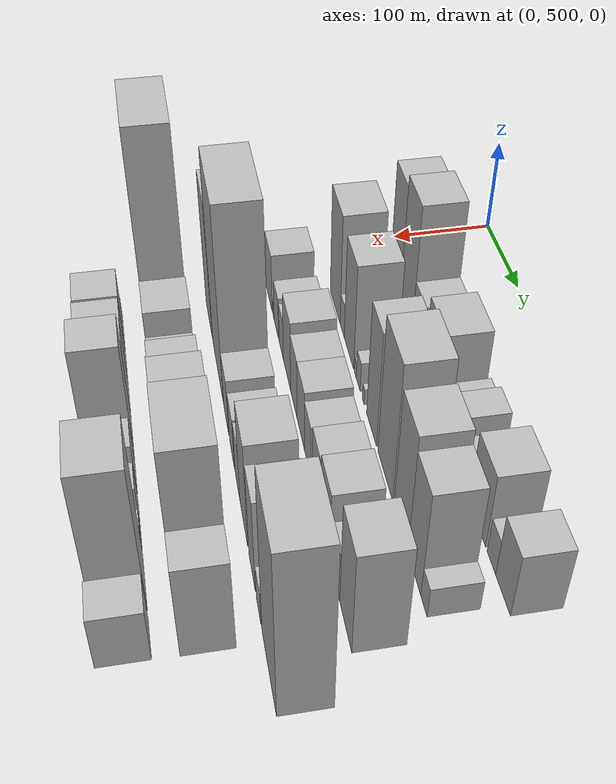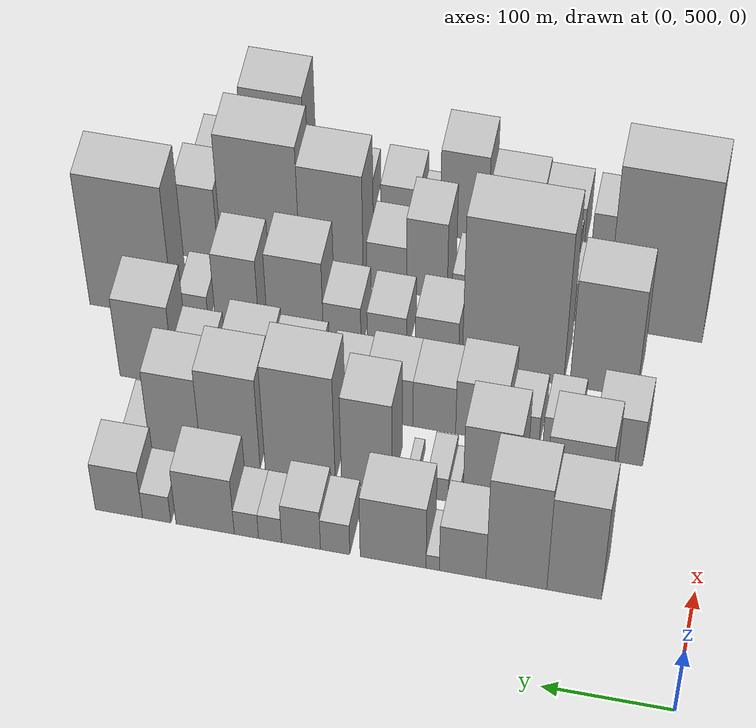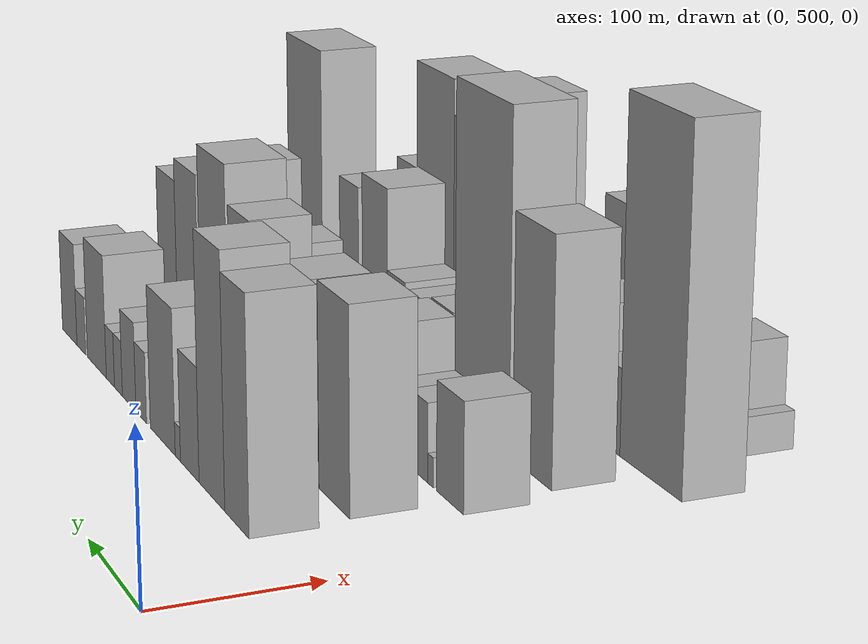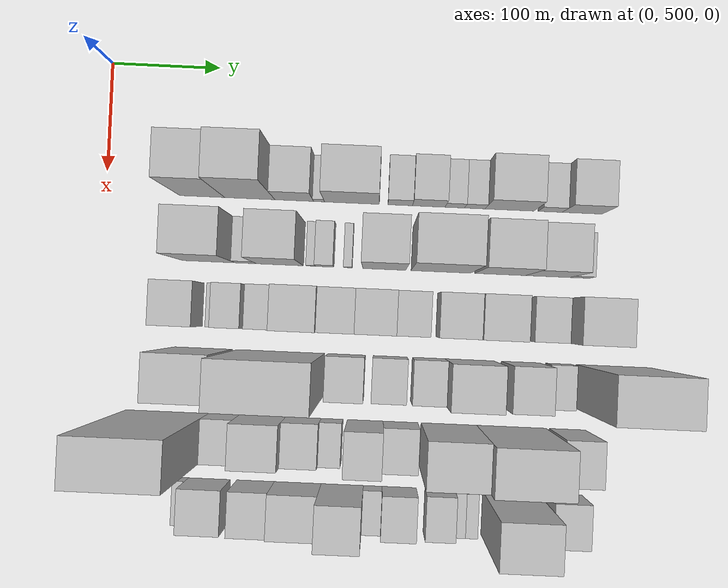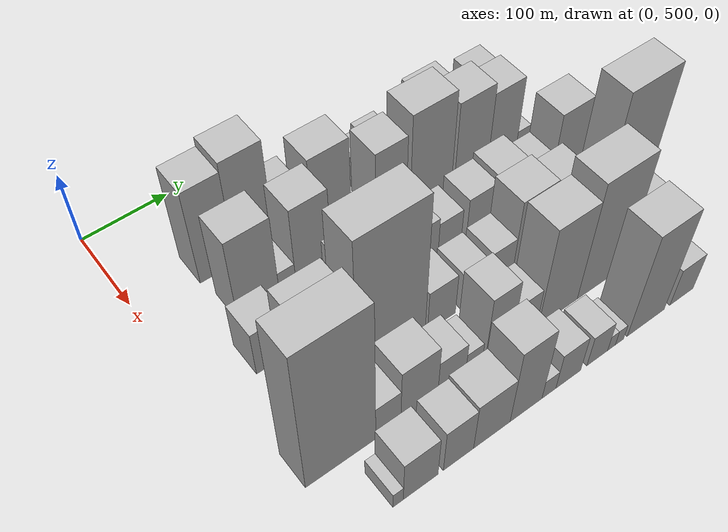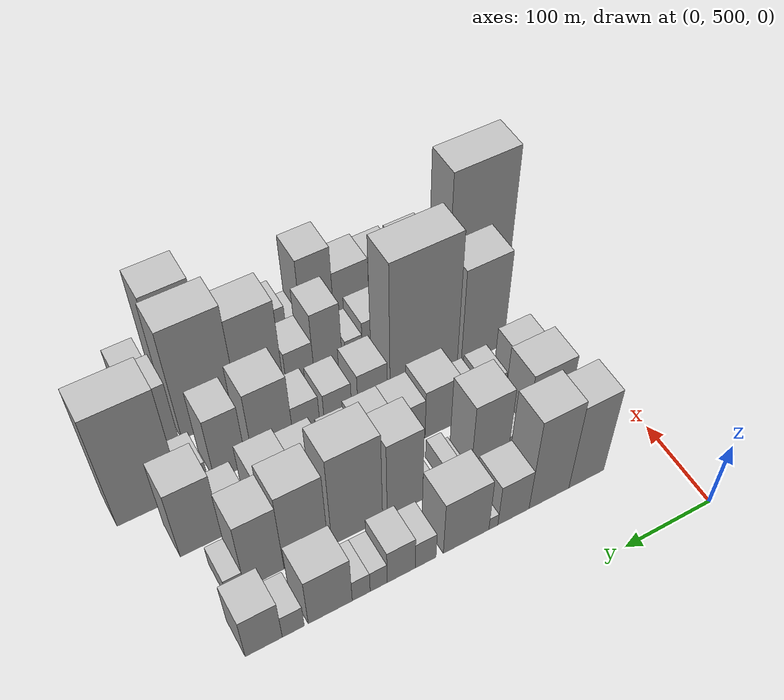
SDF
<sdf version="1.6">
 <world name="default">
  <model name="building_42">
   <static>1</static>
   <pose>100.0000 588.9424 0 0.000000 0.000000 0.000000</pose>
   <link name="link">
    <pose>0 0 69.00 0 0 0</pose>
    <collision name="collision"><geometry><box><size>40.0000 41.5972 138.0000</size></box></geometry></collision>
    <visual name="visual">
     <cast_shadows>0</cast_shadows>
     <geometry><box><size>40.0000 41.5972 138.0000</size></box></geometry>
     <material>
      <script>
       <uri>model://HANNAS_wall/materials/scripts</uri>
       <uri>model://HANNAS_wall/materials/textures</uri>
       <name>vrc/HANNAS_wall</name>
      </script>
     </material>
    </visual>
   </link>
  </model>
  <model name="building_43">
   <static>1</static>
   <pose>100.0000 633.0109 0 0.000000 0.000000 0.000000</pose>
   <link name="link">
    <pose>0 0 75.00 0 0 0</pose>
    <collision name="collision"><geometry><box><size>40.0000 46.5398 150.0000</size></box></geometry></collision>
    <visual name="visual">
     <cast_shadows>0</cast_shadows>
     <geometry><box><size>40.0000 46.5398 150.0000</size></box></geometry>
     <material>
      <script>
       <uri>model://HANNAS_wall/materials/scripts</uri>
       <uri>model://HANNAS_wall/materials/textures</uri>
       <name>vrc/HANNAS_wall</name>
      </script>
     </material>
    </visual>
   </link>
  </model>
  <model name="building_44">
   <static>1</static>
   <pose>100.0000 674.1414 0 0.000000 0.000000 0.000000</pose>
   <link name="link">
    <pose>0 0 34.50 0 0 0</pose>
    <collision name="collision"><geometry><box><size>40.0000 35.7212 69.0000</size></box></geometry></collision>
    <visual name="visual">
     <cast_shadows>0</cast_shadows>
     <geometry><box><size>40.0000 35.7212 69.0000</size></box></geometry>
     <material>
      <script>
       <uri>model://HANNAS_wall/materials/scripts</uri>
       <uri>model://HANNAS_wall/materials/textures</uri>
       <name>vrc/HANNAS_wall</name>
      </script>
     </material>
    </visual>
   </link>
  </model>
  <model name="building_45">
   <static>1</static>
   <pose>100.0000 697.1160 0 0.000000 0.000000 0.000000</pose>
   <link name="link">
    <pose>0 0 10.50 0 0 0</pose>
    <collision name="collision"><geometry><box><size>40.0000 10.2280 21.0000</size></box></geometry></collision>
    <visual name="visual">
     <cast_shadows>0</cast_shadows>
     <geometry><box><size>40.0000 10.2280 21.0000</size></box></geometry>
     <material>
      <script>
       <uri>model://HANNAS_wall/materials/scripts</uri>
       <uri>model://HANNAS_wall/materials/textures</uri>
       <name>vrc/HANNAS_wall</name>
      </script>
     </material>
    </visual>
   </link>
  </model>
  <model name="building_46">
   <static>1</static>
   <pose>100.0000 727.5770 0 0.000000 0.000000 0.000000</pose>
   <link name="link">
    <pose>0 0 45.00 0 0 0</pose>
    <collision name="collision"><geometry><box><size>40.0000 50.6938 90.0000</size></box></geometry></collision>
    <visual name="visual">
     <cast_shadows>0</cast_shadows>
     <geometry><box><size>40.0000 50.6938 90.0000</size></box></geometry>
     <material>
      <script>
       <uri>model://HANNAS_wall/materials/scripts</uri>
       <uri>model://HANNAS_wall/materials/textures</uri>
       <name>vrc/HANNAS_wall</name>
      </script>
     </material>
    </visual>
   </link>
  </model>
  <model name="building_47">
   <static>1</static>
   <pose>100.0000 772.2596 0 0.000000 0.000000 0.000000</pose>
   <link name="link">
    <pose>0 0 22.50 0 0 0</pose>
    <collision name="collision"><geometry><box><size>40.0000 22.6715 45.0000</size></box></geometry></collision>
    <visual name="visual">
     <cast_shadows>0</cast_shadows>
     <geometry><box><size>40.0000 22.6715 45.0000</size></box></geometry>
     <material>
      <script>
       <uri>model://HANNAS_wall/materials/scripts</uri>
       <uri>model://HANNAS_wall/materials/textures</uri>
       <name>vrc/HANNAS_wall</name>
      </script>
     </material>
    </visual>
   </link>
  </model>
  <model name="building_48">
   <static>1</static>
   <pose>100.0000 798.6572 0 0.000000 0.000000 0.000000</pose>
   <link name="link">
    <pose>0 0 28.50 0 0 0</pose>
    <collision name="collision"><geometry><box><size>40.0000 30.1238 57.0000</size></box></geometry></collision>
    <visual name="visual">
     <cast_shadows>0</cast_shadows>
     <geometry><box><size>40.0000 30.1238 57.0000</size></box></geometry>
     <material>
      <script>
       <uri>model://HANNAS_wall/materials/scripts</uri>
       <uri>model://HANNAS_wall/materials/textures</uri>
       <name>vrc/HANNAS_wall</name>
      </script>
     </material>
    </visual>
   </link>
  </model>
  <model name="building_49">
   <static>1</static>
   <pose>100.0000 822.7198 0 0.000000 0.000000 0.000000</pose>
   <link name="link">
    <pose>0 0 18.00 0 0 0</pose>
    <collision name="collision"><geometry><box><size>40.0000 18.0014 36.0000</size></box></geometry></collision>
    <visual name="visual">
     <cast_shadows>0</cast_shadows>
     <geometry><box><size>40.0000 18.0014 36.0000</size></box></geometry>
     <material>
      <script>
       <uri>model://HANNAS_wall/materials/scripts</uri>
       <uri>model://HANNAS_wall/materials/textures</uri>
       <name>vrc/HANNAS_wall</name>
      </script>
     </material>
    </visual>
   </link>
  </model>
  <model name="building_50">
   <static>1</static>
   <pose>100.0000 841.1278 0 0.000000 0.000000 0.000000</pose>
   <link name="link">
    <pose>0 0 18.00 0 0 0</pose>
    <collision name="collision"><geometry><box><size>40.0000 18.8147 36.0000</size></box></geometry></collision>
    <visual name="visual">
     <cast_shadows>0</cast_shadows>
     <geometry><box><size>40.0000 18.8147 36.0000</size></box></geometry>
     <material>
      <script>
       <uri>model://HANNAS_wall/materials/scripts</uri>
       <uri>model://HANNAS_wall/materials/textures</uri>
       <name>vrc/HANNAS_wall</name>
      </script>
     </material>
    </visual>
   </link>
  </model>
  <model name="building_51">
   <static>1</static>
   <pose>100.0000 873.2717 0 0.000000 0.000000 0.000000</pose>
   <link name="link">
    <pose>0 0 40.50 0 0 0</pose>
    <collision name="collision"><geometry><box><size>40.0000 45.4730 81.0000</size></box></geometry></collision>
    <visual name="visual">
     <cast_shadows>0</cast_shadows>
     <geometry><box><size>40.0000 45.4730 81.0000</size></box></geometry>
     <material>
      <script>
       <uri>model://HANNAS_wall/materials/scripts</uri>
       <uri>model://HANNAS_wall/materials/textures</uri>
       <name>vrc/HANNAS_wall</name>
      </script>
     </material>
    </visual>
   </link>
  </model>
  <model name="building_52">
   <static>1</static>
   <pose>100.0000 911.0967 0 0.000000 0.000000 0.000000</pose>
   <link name="link">
    <pose>0 0 19.50 0 0 0</pose>
    <collision name="collision"><geometry><box><size>40.0000 22.1771 39.0000</size></box></geometry></collision>
    <visual name="visual">
     <cast_shadows>0</cast_shadows>
     <geometry><box><size>40.0000 22.1771 39.0000</size></box></geometry>
     <material>
      <script>
       <uri>model://HANNAS_wall/materials/scripts</uri>
       <uri>model://HANNAS_wall/materials/textures</uri>
       <name>vrc/HANNAS_wall</name>
      </script>
     </material>
    </visual>
   </link>
  </model>
  <model name="building_53">
   <static>1</static>
   <pose>100.0000 940.7237 0 0.000000 0.000000 0.000000</pose>
   <link name="link">
    <pose>0 0 34.50 0 0 0</pose>
    <collision name="collision"><geometry><box><size>40.0000 37.0770 69.0000</size></box></geometry></collision>
    <visual name="visual">
     <cast_shadows>0</cast_shadows>
     <geometry><box><size>40.0000 37.0770 69.0000</size></box></geometry>
     <material>
      <script>
       <uri>model://HANNAS_wall/materials/scripts</uri>
       <uri>model://HANNAS_wall/materials/textures</uri>
       <name>vrc/HANNAS_wall</name>
      </script>
     </material>
    </visual>
   </link>
  </model>
  <model name="building_101">
   <static>1</static>
   <pose>160.0000 598.1795 0 0.000000 0.000000 0.000000</pose>
   <link name="link">
    <pose>0 0 61.50 0 0 0</pose>
    <collision name="collision"><geometry><box><size>40.0000 48.7257 123.0000</size></box></geometry></collision>
    <visual name="visual">
     <cast_shadows>0</cast_shadows>
     <geometry><box><size>40.0000 48.7257 123.0000</size></box></geometry>
     <material>
      <script>
       <uri>model://HANNAS_wall/materials/scripts</uri>
       <uri>model://HANNAS_wall/materials/textures</uri>
       <name>vrc/HANNAS_wall</name>
      </script>
     </material>
    </visual>
   </link>
  </model>
  <model name="building_102">
   <static>1</static>
   <pose>160.0000 632.3740 0 0.000000 0.000000 0.000000</pose>
   <link name="link">
    <pose>0 0 18.00 0 0 0</pose>
    <collision name="collision"><geometry><box><size>40.0000 19.6633 36.0000</size></box></geometry></collision>
    <visual name="visual">
     <cast_shadows>0</cast_shadows>
     <geometry><box><size>40.0000 19.6633 36.0000</size></box></geometry>
     <material>
      <script>
       <uri>model://HANNAS_wall/materials/scripts</uri>
       <uri>model://HANNAS_wall/materials/textures</uri>
       <name>vrc/HANNAS_wall</name>
      </script>
     </material>
    </visual>
   </link>
  </model>
  <model name="building_103">
   <static>1</static>
   <pose>160.0000 663.7839 0 0.000000 0.000000 0.000000</pose>
   <link name="link">
    <pose>0 0 58.50 0 0 0</pose>
    <collision name="collision"><geometry><box><size>40.0000 43.1563 117.0000</size></box></geometry></collision>
    <visual name="visual">
     <cast_shadows>0</cast_shadows>
     <geometry><box><size>40.0000 43.1563 117.0000</size></box></geometry>
     <material>
      <script>
       <uri>model://HANNAS_wall/materials/scripts</uri>
       <uri>model://HANNAS_wall/materials/textures</uri>
       <name>vrc/HANNAS_wall</name>
      </script>
     </material>
    </visual>
   </link>
  </model>
  <model name="building_104">
   <static>1</static>
   <pose>160.0000 692.5839 0 0.000000 0.000000 0.000000</pose>
   <link name="link">
    <pose>0 0 9.00 0 0 0</pose>
    <collision name="collision"><geometry><box><size>40.0000 8.4438 18.0000</size></box></geometry></collision>
    <visual name="visual">
     <cast_shadows>0</cast_shadows>
     <geometry><box><size>40.0000 8.4438 18.0000</size></box></geometry>
     <material>
      <script>
       <uri>model://HANNAS_wall/materials/scripts</uri>
       <uri>model://HANNAS_wall/materials/textures</uri>
       <name>vrc/HANNAS_wall</name>
      </script>
     </material>
    </visual>
   </link>
  </model>
  <model name="building_105">
   <static>1</static>
   <pose>160.0000 705.2146 0 0.000000 0.000000 0.000000</pose>
   <link name="link">
    <pose>0 0 16.50 0 0 0</pose>
    <collision name="collision"><geometry><box><size>40.0000 16.8175 33.0000</size></box></geometry></collision>
    <visual name="visual">
     <cast_shadows>0</cast_shadows>
     <geometry><box><size>40.0000 16.8175 33.0000</size></box></geometry>
     <material>
      <script>
       <uri>model://HANNAS_wall/materials/scripts</uri>
       <uri>model://HANNAS_wall/materials/textures</uri>
       <name>vrc/HANNAS_wall</name>
      </script>
     </material>
    </visual>
   </link>
  </model>
  <model name="building_106">
   <static>1</static>
   <pose>160.0000 726.5725 0 0.000000 0.000000 0.000000</pose>
   <link name="link">
    <pose>0 0 9.00 0 0 0</pose>
    <collision name="collision"><geometry><box><size>40.0000 7.8984 18.0000</size></box></geometry></collision>
    <visual name="visual">
     <cast_shadows>0</cast_shadows>
     <geometry><box><size>40.0000 7.8984 18.0000</size></box></geometry>
     <material>
      <script>
       <uri>model://HANNAS_wall/materials/scripts</uri>
       <uri>model://HANNAS_wall/materials/textures</uri>
       <name>vrc/HANNAS_wall</name>
      </script>
     </material>
    </visual>
   </link>
  </model>
  <model name="building_107">
   <static>1</static>
   <pose>160.0000 760.2136 0 0.000000 0.000000 0.000000</pose>
   <link name="link">
    <pose>0 0 63.00 0 0 0</pose>
    <collision name="collision"><geometry><box><size>40.0000 39.3839 126.0000</size></box></geometry></collision>
    <visual name="visual">
     <cast_shadows>0</cast_shadows>
     <geometry><box><size>40.0000 39.3839 126.0000</size></box></geometry>
     <material>
      <script>
       <uri>model://HANNAS_wall/materials/scripts</uri>
       <uri>model://HANNAS_wall/materials/textures</uri>
       <name>vrc/HANNAS_wall</name>
      </script>
     </material>
    </visual>
   </link>
  </model>
  <model name="building_108">
   <static>1</static>
   <pose>160.0000 812.4189 0 0.000000 0.000000 0.000000</pose>
   <link name="link">
    <pose>0 0 75.00 0 0 0</pose>
    <collision name="collision"><geometry><box><size>40.0000 55.0267 150.0000</size></box></geometry></collision>
    <visual name="visual">
     <cast_shadows>0</cast_shadows>
     <geometry><box><size>40.0000 55.0267 150.0000</size></box></geometry>
     <material>
      <script>
       <uri>model://HANNAS_wall/materials/scripts</uri>
       <uri>model://HANNAS_wall/materials/textures</uri>
       <name>vrc/HANNAS_wall</name>
      </script>
     </material>
    </visual>
   </link>
  </model>
  <model name="building_109">
   <static>1</static>
   <pose>160.0000 867.1851 0 0.000000 0.000000 0.000000</pose>
   <link name="link">
    <pose>0 0 64.50 0 0 0</pose>
    <collision name="collision"><geometry><box><size>40.0000 46.5057 129.0000</size></box></geometry></collision>
    <visual name="visual">
     <cast_shadows>0</cast_shadows>
     <geometry><box><size>40.0000 46.5057 129.0000</size></box></geometry>
     <material>
      <script>
       <uri>model://HANNAS_wall/materials/scripts</uri>
       <uri>model://HANNAS_wall/materials/textures</uri>
       <name>vrc/HANNAS_wall</name>
      </script>
     </material>
    </visual>
   </link>
  </model>
  <model name="building_110">
   <static>1</static>
   <pose>160.0000 910.7348 0 0.000000 0.000000 0.000000</pose>
   <link name="link">
    <pose>0 0 57.00 0 0 0</pose>
    <collision name="collision"><geometry><box><size>40.0000 40.5938 114.0000</size></box></geometry></collision>
    <visual name="visual">
     <cast_shadows>0</cast_shadows>
     <geometry><box><size>40.0000 40.5938 114.0000</size></box></geometry>
     <material>
      <script>
       <uri>model://HANNAS_wall/materials/scripts</uri>
       <uri>model://HANNAS_wall/materials/textures</uri>
       <name>vrc/HANNAS_wall</name>
      </script>
     </material>
    </visual>
   </link>
  </model>
  <model name="building_111">
   <static>1</static>
   <pose>160.0000 940.4018 0 0.000000 0.000000 0.000000</pose>
   <link name="link">
    <pose>0 0 16.50 0 0 0</pose>
    <collision name="collision"><geometry><box><size>40.0000 18.7402 33.0000</size></box></geometry></collision>
    <visual name="visual">
     <cast_shadows>0</cast_shadows>
     <geometry><box><size>40.0000 18.7402 33.0000</size></box></geometry>
     <material>
      <script>
       <uri>model://HANNAS_wall/materials/scripts</uri>
       <uri>model://HANNAS_wall/materials/textures</uri>
       <name>vrc/HANNAS_wall</name>
      </script>
     </material>
    </visual>
   </link>
  </model>
  <model name="building_152">
   <static>1</static>
   <pose>220.0000 575.1964 0 0.000000 0.000000 0.000000</pose>
   <link name="link">
    <pose>0 0 33.00 0 0 0</pose>
    <collision name="collision"><geometry><box><size>40.0000 38.4011 66.0000</size></box></geometry></collision>
    <visual name="visual">
     <cast_shadows>0</cast_shadows>
     <geometry><box><size>40.0000 38.4011 66.0000</size></box></geometry>
     <material>
      <script>
       <uri>model://HANNAS_wall/materials/scripts</uri>
       <uri>model://HANNAS_wall/materials/textures</uri>
       <name>vrc/HANNAS_wall</name>
      </script>
     </material>
    </visual>
   </link>
  </model>
  <model name="building_153">
   <static>1</static>
   <pose>220.0000 603.4358 0 0.000000 0.000000 0.000000</pose>
   <link name="link">
    <pose>0 0 9.00 0 0 0</pose>
    <collision name="collision"><geometry><box><size>40.0000 8.0779 18.0000</size></box></geometry></collision>
    <visual name="visual">
     <cast_shadows>0</cast_shadows>
     <geometry><box><size>40.0000 8.0779 18.0000</size></box></geometry>
     <material>
      <script>
       <uri>model://HANNAS_wall/materials/scripts</uri>
       <uri>model://HANNAS_wall/materials/textures</uri>
       <name>vrc/HANNAS_wall</name>
      </script>
     </material>
    </visual>
   </link>
  </model>
  <model name="building_154">
   <static>1</static>
   <pose>220.0000 620.7856 0 0.000000 0.000000 0.000000</pose>
   <link name="link">
    <pose>0 0 24.00 0 0 0</pose>
    <collision name="collision"><geometry><box><size>40.0000 26.6217 48.0000</size></box></geometry></collision>
    <visual name="visual">
     <cast_shadows>0</cast_shadows>
     <geometry><box><size>40.0000 26.6217 48.0000</size></box></geometry>
     <material>
      <script>
       <uri>model://HANNAS_wall/materials/scripts</uri>
       <uri>model://HANNAS_wall/materials/textures</uri>
       <name>vrc/HANNAS_wall</name>
      </script>
     </material>
    </visual>
   </link>
  </model>
  <model name="building_155">
   <static>1</static>
   <pose>220.0000 649.5528 0 0.000000 0.000000 0.000000</pose>
   <link name="link">
    <pose>0 0 22.50 0 0 0</pose>
    <collision name="collision"><geometry><box><size>40.0000 24.9128 45.0000</size></box></geometry></collision>
    <visual name="visual">
     <cast_shadows>0</cast_shadows>
     <geometry><box><size>40.0000 24.9128 45.0000</size></box></geometry>
     <material>
      <script>
       <uri>model://HANNAS_wall/materials/scripts</uri>
       <uri>model://HANNAS_wall/materials/textures</uri>
       <name>vrc/HANNAS_wall</name>
      </script>
     </material>
    </visual>
   </link>
  </model>
  <model name="building_156">
   <static>1</static>
   <pose>220.0000 682.2288 0 0.000000 0.000000 0.000000</pose>
   <link name="link">
    <pose>0 0 39.00 0 0 0</pose>
    <collision name="collision"><geometry><box><size>40.0000 40.4391 78.0000</size></box></geometry></collision>
    <visual name="visual">
     <cast_shadows>0</cast_shadows>
     <geometry><box><size>40.0000 40.4391 78.0000</size></box></geometry>
     <material>
      <script>
       <uri>model://HANNAS_wall/materials/scripts</uri>
       <uri>model://HANNAS_wall/materials/textures</uri>
       <name>vrc/HANNAS_wall</name>
      </script>
     </material>
    </visual>
   </link>
  </model>
  <model name="building_157">
   <static>1</static>
   <pose>220.0000 719.2688 0 0.000000 0.000000 0.000000</pose>
   <link name="link">
    <pose>0 0 33.00 0 0 0</pose>
    <collision name="collision"><geometry><box><size>40.0000 33.6408 66.0000</size></box></geometry></collision>
    <visual name="visual">
     <cast_shadows>0</cast_shadows>
     <geometry><box><size>40.0000 33.6408 66.0000</size></box></geometry>
     <material>
      <script>
       <uri>model://HANNAS_wall/materials/scripts</uri>
       <uri>model://HANNAS_wall/materials/textures</uri>
       <name>vrc/HANNAS_wall</name>
      </script>
     </material>
    </visual>
   </link>
  </model>
  <model name="building_158">
   <static>1</static>
   <pose>220.0000 754.6498 0 0.000000 0.000000 0.000000</pose>
   <link name="link">
    <pose>0 0 33.00 0 0 0</pose>
    <collision name="collision"><geometry><box><size>40.0000 37.1213 66.0000</size></box></geometry></collision>
    <visual name="visual">
     <cast_shadows>0</cast_shadows>
     <geometry><box><size>40.0000 37.1213 66.0000</size></box></geometry>
     <material>
      <script>
       <uri>model://HANNAS_wall/materials/scripts</uri>
       <uri>model://HANNAS_wall/materials/textures</uri>
       <name>vrc/HANNAS_wall</name>
      </script>
     </material>
    </visual>
   </link>
  </model>
  <model name="building_159">
   <static>1</static>
   <pose>220.0000 788.2528 0 0.000000 0.000000 0.000000</pose>
   <link name="link">
    <pose>0 0 28.50 0 0 0</pose>
    <collision name="collision"><geometry><box><size>40.0000 30.0847 57.0000</size></box></geometry></collision>
    <visual name="visual">
     <cast_shadows>0</cast_shadows>
     <geometry><box><size>40.0000 30.0847 57.0000</size></box></geometry>
     <material>
      <script>
       <uri>model://HANNAS_wall/materials/scripts</uri>
       <uri>model://HANNAS_wall/materials/textures</uri>
       <name>vrc/HANNAS_wall</name>
      </script>
     </material>
    </visual>
   </link>
  </model>
  <model name="building_160">
   <static>1</static>
   <pose>220.0000 829.0000 0 0.000000 0.000000 0.000000</pose>
   <link name="link">
    <pose>0 0 33.00 0 0 0</pose>
    <collision name="collision"><geometry><box><size>40.0000 37.4096 66.0000</size></box></geometry></collision>
    <visual name="visual">
     <cast_shadows>0</cast_shadows>
     <geometry><box><size>40.0000 37.4096 66.0000</size></box></geometry>
     <material>
      <script>
       <uri>model://HANNAS_wall/materials/scripts</uri>
       <uri>model://HANNAS_wall/materials/textures</uri>
       <name>vrc/HANNAS_wall</name>
      </script>
     </material>
    </visual>
   </link>
  </model>
  <model name="building_161">
   <static>1</static>
   <pose>220.0000 867.5709 0 0.000000 0.000000 0.000000</pose>
   <link name="link">
    <pose>0 0 37.50 0 0 0</pose>
    <collision name="collision"><geometry><box><size>40.0000 39.7323 75.0000</size></box></geometry></collision>
    <visual name="visual">
     <cast_shadows>0</cast_shadows>
     <geometry><box><size>40.0000 39.7323 75.0000</size></box></geometry>
     <material>
      <script>
       <uri>model://HANNAS_wall/materials/scripts</uri>
       <uri>model://HANNAS_wall/materials/textures</uri>
       <name>vrc/HANNAS_wall</name>
      </script>
     </material>
    </visual>
   </link>
  </model>
  <model name="building_162">
   <static>1</static>
   <pose>220.0000 910.1833 0 0.000000 0.000000 0.000000</pose>
   <link name="link">
    <pose>0 0 27.00 0 0 0</pose>
    <collision name="collision"><geometry><box><size>40.0000 31.4926 54.0000</size></box></geometry></collision>
    <visual name="visual">
     <cast_shadows>0</cast_shadows>
     <geometry><box><size>40.0000 31.4926 54.0000</size></box></geometry>
     <material>
      <script>
       <uri>model://HANNAS_wall/materials/scripts</uri>
       <uri>model://HANNAS_wall/materials/textures</uri>
       <name>vrc/HANNAS_wall</name>
      </script>
     </material>
    </visual>
   </link>
  </model>
  <model name="building_163">
   <static>1</static>
   <pose>220.0000 947.8729 0 0.000000 0.000000 0.000000</pose>
   <link name="link">
    <pose>0 0 55.50 0 0 0</pose>
    <collision name="collision"><geometry><box><size>40.0000 43.8865 111.0000</size></box></geometry></collision>
    <visual name="visual">
     <cast_shadows>0</cast_shadows>
     <geometry><box><size>40.0000 43.8865 111.0000</size></box></geometry>
     <material>
      <script>
       <uri>model://HANNAS_wall/materials/scripts</uri>
       <uri>model://HANNAS_wall/materials/textures</uri>
       <name>vrc/HANNAS_wall</name>
      </script>
     </material>
    </visual>
   </link>
  </model>
  <model name="building_209">
   <static>1</static>
   <pose>280.0000 596.5918 0 0.000000 0.000000 0.000000</pose>
   <link name="link">
    <pose>0 0 75.00 0 0 0</pose>
    <collision name="collision"><geometry><box><size>40.0000 53.0972 150.0000</size></box></geometry></collision>
    <visual name="visual">
     <cast_shadows>0</cast_shadows>
     <geometry><box><size>40.0000 53.0972 150.0000</size></box></geometry>
     <material>
      <script>
       <uri>model://HANNAS_wall/materials/scripts</uri>
       <uri>model://HANNAS_wall/materials/textures</uri>
       <name>vrc/HANNAS_wall</name>
      </script>
     </material>
    </visual>
   </link>
  </model>
  <model name="building_210">
   <static>1</static>
   <pose>280.0000 668.4489 0 0.000000 0.000000 0.000000</pose>
   <link name="link">
    <pose>0 0 105.00 0 0 0</pose>
    <collision name="collision"><geometry><box><size>40.0000 80.6169 210.0000</size></box></geometry></collision>
    <visual name="visual">
     <cast_shadows>0</cast_shadows>
     <geometry><box><size>40.0000 80.6169 210.0000</size></box></geometry>
     <material>
      <script>
       <uri>model://HANNAS_wall/materials/scripts</uri>
       <uri>model://HANNAS_wall/materials/textures</uri>
       <name>vrc/HANNAS_wall</name>
      </script>
     </material>
    </visual>
   </link>
  </model>
  <model name="building_211">
   <static>1</static>
   <pose>280.0000 729.0114 0 0.000000 0.000000 0.000000</pose>
   <link name="link">
    <pose>0 0 31.50 0 0 0</pose>
    <collision name="collision"><geometry><box><size>40.0000 34.5081 63.0000</size></box></geometry></collision>
    <visual name="visual">
     <cast_shadows>0</cast_shadows>
     <geometry><box><size>40.0000 34.5081 63.0000</size></box></geometry>
     <material>
      <script>
       <uri>model://HANNAS_wall/materials/scripts</uri>
       <uri>model://HANNAS_wall/materials/textures</uri>
       <name>vrc/HANNAS_wall</name>
      </script>
     </material>
    </visual>
   </link>
  </model>
  <model name="building_212">
   <static>1</static>
   <pose>280.0000 768.9045 0 0.000000 0.000000 0.000000</pose>
   <link name="link">
    <pose>0 0 28.50 0 0 0</pose>
    <collision name="collision"><geometry><box><size>40.0000 31.2781 57.0000</size></box></geometry></collision>
    <visual name="visual">
     <cast_shadows>0</cast_shadows>
     <geometry><box><size>40.0000 31.2781 57.0000</size></box></geometry>
     <material>
      <script>
       <uri>model://HANNAS_wall/materials/scripts</uri>
       <uri>model://HANNAS_wall/materials/textures</uri>
       <name>vrc/HANNAS_wall</name>
      </script>
     </material>
    </visual>
   </link>
  </model>
  <model name="building_213">
   <static>1</static>
   <pose>280.0000 804.5763 0 0.000000 0.000000 0.000000</pose>
   <link name="link">
    <pose>0 0 30.00 0 0 0</pose>
    <collision name="collision"><geometry><box><size>40.0000 30.0655 60.0000</size></box></geometry></collision>
    <visual name="visual">
     <cast_shadows>0</cast_shadows>
     <geometry><box><size>40.0000 30.0655 60.0000</size></box></geometry>
     <material>
      <script>
       <uri>model://HANNAS_wall/materials/scripts</uri>
       <uri>model://HANNAS_wall/materials/textures</uri>
       <name>vrc/HANNAS_wall</name>
      </script>
     </material>
    </visual>
   </link>
  </model>
  <model name="building_214">
   <static>1</static>
   <pose>280.0000 842.1549 0 0.000000 0.000000 0.000000</pose>
   <link name="link">
    <pose>0 0 57.00 0 0 0</pose>
    <collision name="collision"><geometry><box><size>40.0000 45.0918 114.0000</size></box></geometry></collision>
    <visual name="visual">
     <cast_shadows>0</cast_shadows>
     <geometry><box><size>40.0000 45.0918 114.0000</size></box></geometry>
     <material>
      <script>
       <uri>model://HANNAS_wall/materials/scripts</uri>
       <uri>model://HANNAS_wall/materials/textures</uri>
       <name>vrc/HANNAS_wall</name>
      </script>
     </material>
    </visual>
   </link>
  </model>
  <model name="building_215">
   <static>1</static>
   <pose>280.0000 889.2682 0 0.000000 0.000000 0.000000</pose>
   <link name="link">
    <pose>0 0 51.00 0 0 0</pose>
    <collision name="collision"><geometry><box><size>40.0000 35.1347 102.0000</size></box></geometry></collision>
    <visual name="visual">
     <cast_shadows>0</cast_shadows>
     <geometry><box><size>40.0000 35.1347 102.0000</size></box></geometry>
     <material>
      <script>
       <uri>model://HANNAS_wall/materials/scripts</uri>
       <uri>model://HANNAS_wall/materials/textures</uri>
       <name>vrc/HANNAS_wall</name>
      </script>
     </material>
    </visual>
   </link>
  </model>
  <model name="building_216">
   <static>1</static>
   <pose>280.0000 924.4000 0 0.000000 0.000000 0.000000</pose>
   <link name="link">
    <pose>0 0 19.50 0 0 0</pose>
    <collision name="collision"><geometry><box><size>40.0000 23.1289 39.0000</size></box></geometry></collision>
    <visual name="visual">
     <cast_shadows>0</cast_shadows>
     <geometry><box><size>40.0000 23.1289 39.0000</size></box></geometry>
     <material>
      <script>
       <uri>model://HANNAS_wall/materials/scripts</uri>
       <uri>model://HANNAS_wall/materials/textures</uri>
       <name>vrc/HANNAS_wall</name>
      </script>
     </material>
    </visual>
   </link>
  </model>
  <model name="building_217">
   <static>1</static>
   <pose>280.0000 975.1712 0 0.000000 0.000000 0.000000</pose>
   <link name="link">
    <pose>0 0 90.00 0 0 0</pose>
    <collision name="collision"><geometry><box><size>40.0000 68.4135 180.0000</size></box></geometry></collision>
    <visual name="visual">
     <cast_shadows>0</cast_shadows>
     <geometry><box><size>40.0000 68.4135 180.0000</size></box></geometry>
     <material>
      <script>
       <uri>model://HANNAS_wall/materials/scripts</uri>
       <uri>model://HANNAS_wall/materials/textures</uri>
       <name>vrc/HANNAS_wall</name>
      </script>
     </material>
    </visual>
   </link>
  </model>
  <model name="building_267">
   <static>1</static>
   <pose>340.0000 566.0925 0 0.000000 0.000000 0.000000</pose>
   <link name="link">
    <pose>0 0 109.50 0 0 0</pose>
    <collision name="collision"><geometry><box><size>40.0000 76.5050 219.0000</size></box></geometry></collision>
    <visual name="visual">
     <cast_shadows>0</cast_shadows>
     <geometry><box><size>40.0000 76.5050 219.0000</size></box></geometry>
     <material>
      <script>
       <uri>model://HANNAS_wall/materials/scripts</uri>
       <uri>model://HANNAS_wall/materials/textures</uri>
       <name>vrc/HANNAS_wall</name>
      </script>
     </material>
    </visual>
   </link>
  </model>
  <model name="building_268">
   <static>1</static>
   <pose>340.0000 618.4552 0 0.000000 0.000000 0.000000</pose>
   <link name="link">
    <pose>0 0 27.00 0 0 0</pose>
    <collision name="collision"><geometry><box><size>40.0000 28.2204 54.0000</size></box></geometry></collision>
    <visual name="visual">
     <cast_shadows>0</cast_shadows>
     <geometry><box><size>40.0000 28.2204 54.0000</size></box></geometry>
     <material>
      <script>
       <uri>model://HANNAS_wall/materials/scripts</uri>
       <uri>model://HANNAS_wall/materials/textures</uri>
       <name>vrc/HANNAS_wall</name>
      </script>
     </material>
    </visual>
   </link>
  </model>
  <model name="building_269">
   <static>1</static>
   <pose>340.0000 653.9815 0 0.000000 0.000000 0.000000</pose>
   <link name="link">
    <pose>0 0 42.00 0 0 0</pose>
    <collision name="collision"><geometry><box><size>40.0000 42.8322 84.0000</size></box></geometry></collision>
    <visual name="visual">
     <cast_shadows>0</cast_shadows>
     <geometry><box><size>40.0000 42.8322 84.0000</size></box></geometry>
     <material>
      <script>
       <uri>model://HANNAS_wall/materials/scripts</uri>
       <uri>model://HANNAS_wall/materials/textures</uri>
       <name>vrc/HANNAS_wall</name>
      </script>
     </material>
    </visual>
   </link>
  </model>
  <model name="building_270">
   <static>1</static>
   <pose>340.0000 691.8161 0 0.000000 0.000000 0.000000</pose>
   <link name="link">
    <pose>0 0 28.50 0 0 0</pose>
    <collision name="collision"><geometry><box><size>40.0000 32.8369 57.0000</size></box></geometry></collision>
    <visual name="visual">
     <cast_shadows>0</cast_shadows>
     <geometry><box><size>40.0000 32.8369 57.0000</size></box></geometry>
     <material>
      <script>
       <uri>model://HANNAS_wall/materials/scripts</uri>
       <uri>model://HANNAS_wall/materials/textures</uri>
       <name>vrc/HANNAS_wall</name>
      </script>
     </material>
    </visual>
   </link>
  </model>
  <model name="building_271">
   <static>1</static>
   <pose>340.0000 718.2475 0 0.000000 0.000000 0.000000</pose>
   <link name="link">
    <pose>0 0 19.50 0 0 0</pose>
    <collision name="collision"><geometry><box><size>40.0000 20.0260 39.0000</size></box></geometry></collision>
    <visual name="visual">
     <cast_shadows>0</cast_shadows>
     <geometry><box><size>40.0000 20.0260 39.0000</size></box></geometry>
     <material>
      <script>
       <uri>model://HANNAS_wall/materials/scripts</uri>
       <uri>model://HANNAS_wall/materials/textures</uri>
       <name>vrc/HANNAS_wall</name>
      </script>
     </material>
    </visual>
   </link>
  </model>
  <model name="building_272">
   <static>1</static>
   <pose>340.0000 748.7414 0 0.000000 0.000000 0.000000</pose>
   <link name="link">
    <pose>0 0 52.50 0 0 0</pose>
    <collision name="collision"><geometry><box><size>40.0000 32.9617 105.0000</size></box></geometry></collision>
    <visual name="visual">
     <cast_shadows>0</cast_shadows>
     <geometry><box><size>40.0000 32.9617 105.0000</size></box></geometry>
     <material>
      <script>
       <uri>model://HANNAS_wall/materials/scripts</uri>
       <uri>model://HANNAS_wall/materials/textures</uri>
       <name>vrc/HANNAS_wall</name>
      </script>
     </material>
    </visual>
   </link>
  </model>
  <model name="building_273">
   <static>1</static>
   <pose>340.0000 781.2068 0 0.000000 0.000000 0.000000</pose>
   <link name="link">
    <pose>0 0 31.50 0 0 0</pose>
    <collision name="collision"><geometry><box><size>40.0000 31.9691 63.0000</size></box></geometry></collision>
    <visual name="visual">
     <cast_shadows>0</cast_shadows>
     <geometry><box><size>40.0000 31.9691 63.0000</size></box></geometry>
     <material>
      <script>
       <uri>model://HANNAS_wall/materials/scripts</uri>
       <uri>model://HANNAS_wall/materials/textures</uri>
       <name>vrc/HANNAS_wall</name>
      </script>
     </material>
    </visual>
   </link>
  </model>
  <model name="building_274">
   <static>1</static>
   <pose>340.0000 825.8568 0 0.000000 0.000000 0.000000</pose>
   <link name="link">
    <pose>0 0 75.00 0 0 0</pose>
    <collision name="collision"><geometry><box><size>40.0000 51.3309 150.0000</size></box></geometry></collision>
    <visual name="visual">
     <cast_shadows>0</cast_shadows>
     <geometry><box><size>40.0000 51.3309 150.0000</size></box></geometry>
     <material>
      <script>
       <uri>model://HANNAS_wall/materials/scripts</uri>
       <uri>model://HANNAS_wall/materials/textures</uri>
       <name>vrc/HANNAS_wall</name>
      </script>
     </material>
    </visual>
   </link>
  </model>
  <model name="building_275">
   <static>1</static>
   <pose>340.0000 883.5447 0 0.000000 0.000000 0.000000</pose>
   <link name="link">
    <pose>0 0 87.00 0 0 0</pose>
    <collision name="collision"><geometry><box><size>40.0000 64.0449 174.0000</size></box></geometry></collision>
    <visual name="visual">
     <cast_shadows>0</cast_shadows>
     <geometry><box><size>40.0000 64.0449 174.0000</size></box></geometry>
     <material>
      <script>
       <uri>model://HANNAS_wall/materials/scripts</uri>
       <uri>model://HANNAS_wall/materials/textures</uri>
       <name>vrc/HANNAS_wall</name>
      </script>
     </material>
    </visual>
   </link>
  </model>
  <model name="building_276">
   <static>1</static>
   <pose>340.0000 935.1731 0 0.000000 0.000000 0.000000</pose>
   <link name="link">
    <pose>0 0 49.50 0 0 0</pose>
    <collision name="collision"><geometry><box><size>40.0000 33.2120 99.0000</size></box></geometry></collision>
    <visual name="visual">
     <cast_shadows>0</cast_shadows>
     <geometry><box><size>40.0000 33.2120 99.0000</size></box></geometry>
     <material>
      <script>
       <uri>model://HANNAS_wall/materials/scripts</uri>
       <uri>model://HANNAS_wall/materials/textures</uri>
       <name>vrc/HANNAS_wall</name>
      </script>
     </material>
    </visual>
   </link>
  </model>
  <model name="building_320">
   <static>1</static>
   <pose>400.0000 582.8300 0 0.000000 0.000000 0.000000</pose>
   <link name="link">
    <pose>0 0 12.00 0 0 0</pose>
    <collision name="collision"><geometry><box><size>40.0000 11.2368 24.0000</size></box></geometry></collision>
    <visual name="visual">
     <cast_shadows>0</cast_shadows>
     <geometry><box><size>40.0000 11.2368 24.0000</size></box></geometry>
     <material>
      <script>
       <uri>model://HANNAS_wall/materials/scripts</uri>
       <uri>model://HANNAS_wall/materials/textures</uri>
       <name>vrc/HANNAS_wall</name>
      </script>
     </material>
    </visual>
   </link>
  </model>
  <model name="building_321">
   <static>1</static>
   <pose>400.0000 607.6781 0 0.000000 0.000000 0.000000</pose>
   <link name="link">
    <pose>0 0 33.00 0 0 0</pose>
    <collision name="collision"><geometry><box><size>40.0000 38.4594 66.0000</size></box></geometry></collision>
    <visual name="visual">
     <cast_shadows>0</cast_shadows>
     <geometry><box><size>40.0000 38.4594 66.0000</size></box></geometry>
     <material>
      <script>
       <uri>model://HANNAS_wall/materials/scripts</uri>
       <uri>model://HANNAS_wall/materials/textures</uri>
       <name>vrc/HANNAS_wall</name>
      </script>
     </material>
    </visual>
   </link>
  </model>
  <model name="building_322">
   <static>1</static>
   <pose>400.0000 650.2153 0 0.000000 0.000000 0.000000</pose>
   <link name="link">
    <pose>0 0 34.50 0 0 0</pose>
    <collision name="collision"><geometry><box><size>40.0000 34.6150 69.0000</size></box></geometry></collision>
    <visual name="visual">
     <cast_shadows>0</cast_shadows>
     <geometry><box><size>40.0000 34.6150 69.0000</size></box></geometry>
     <material>
      <script>
       <uri>model://HANNAS_wall/materials/scripts</uri>
       <uri>model://HANNAS_wall/materials/textures</uri>
       <name>vrc/HANNAS_wall</name>
      </script>
     </material>
    </visual>
   </link>
  </model>
  <model name="building_323">
   <static>1</static>
   <pose>400.0000 689.1212 0 0.000000 0.000000 0.000000</pose>
   <link name="link">
    <pose>0 0 37.50 0 0 0</pose>
    <collision name="collision"><geometry><box><size>40.0000 43.1968 75.0000</size></box></geometry></collision>
    <visual name="visual">
     <cast_shadows>0</cast_shadows>
     <geometry><box><size>40.0000 43.1968 75.0000</size></box></geometry>
     <material>
      <script>
       <uri>model://HANNAS_wall/materials/scripts</uri>
       <uri>model://HANNAS_wall/materials/textures</uri>
       <name>vrc/HANNAS_wall</name>
      </script>
     </material>
    </visual>
   </link>
  </model>
  <model name="building_324">
   <static>1</static>
   <pose>400.0000 730.1535 0 0.000000 0.000000 0.000000</pose>
   <link name="link">
    <pose>0 0 58.50 0 0 0</pose>
    <collision name="collision"><geometry><box><size>40.0000 38.8678 117.0000</size></box></geometry></collision>
    <visual name="visual">
     <cast_shadows>0</cast_shadows>
     <geometry><box><size>40.0000 38.8678 117.0000</size></box></geometry>
     <material>
      <script>
       <uri>model://HANNAS_wall/materials/scripts</uri>
       <uri>model://HANNAS_wall/materials/textures</uri>
       <name>vrc/HANNAS_wall</name>
      </script>
     </material>
    </visual>
   </link>
  </model>
  <model name="building_325">
   <static>1</static>
   <pose>400.0000 758.2182 0 0.000000 0.000000 0.000000</pose>
   <link name="link">
    <pose>0 0 15.00 0 0 0</pose>
    <collision name="collision"><geometry><box><size>40.0000 17.2616 30.0000</size></box></geometry></collision>
    <visual name="visual">
     <cast_shadows>0</cast_shadows>
     <geometry><box><size>40.0000 17.2616 30.0000</size></box></geometry>
     <material>
      <script>
       <uri>model://HANNAS_wall/materials/scripts</uri>
       <uri>model://HANNAS_wall/materials/textures</uri>
       <name>vrc/HANNAS_wall</name>
      </script>
     </material>
    </visual>
   </link>
  </model>
  <model name="building_326">
   <static>1</static>
   <pose>400.0000 782.5952 0 0.000000 0.000000 0.000000</pose>
   <link name="link">
    <pose>0 0 28.50 0 0 0</pose>
    <collision name="collision"><geometry><box><size>40.0000 31.4923 57.0000</size></box></geometry></collision>
    <visual name="visual">
     <cast_shadows>0</cast_shadows>
     <geometry><box><size>40.0000 31.4923 57.0000</size></box></geometry>
     <material>
      <script>
       <uri>model://HANNAS_wall/materials/scripts</uri>
       <uri>model://HANNAS_wall/materials/textures</uri>
       <name>vrc/HANNAS_wall</name>
      </script>
     </material>
    </visual>
   </link>
  </model>
  <model name="building_327">
   <static>1</static>
   <pose>400.0000 819.8681 0 0.000000 0.000000 0.000000</pose>
   <link name="link">
    <pose>0 0 24.00 0 0 0</pose>
    <collision name="collision"><geometry><box><size>40.0000 27.0534 48.0000</size></box></geometry></collision>
    <visual name="visual">
     <cast_shadows>0</cast_shadows>
     <geometry><box><size>40.0000 27.0534 48.0000</size></box></geometry>
     <material>
      <script>
       <uri>model://HANNAS_wall/materials/scripts</uri>
       <uri>model://HANNAS_wall/materials/textures</uri>
       <name>vrc/HANNAS_wall</name>
      </script>
     </material>
    </visual>
   </link>
  </model>
  <model name="building_328">
   <static>1</static>
   <pose>400.0000 838.4978 0 0.000000 0.000000 0.000000</pose>
   <link name="link">
    <pose>0 0 12.00 0 0 0</pose>
    <collision name="collision"><geometry><box><size>40.0000 10.2059 24.0000</size></box></geometry></collision>
    <visual name="visual">
     <cast_shadows>0</cast_shadows>
     <geometry><box><size>40.0000 10.2059 24.0000</size></box></geometry>
     <material>
      <script>
       <uri>model://HANNAS_wall/materials/scripts</uri>
       <uri>model://HANNAS_wall/materials/textures</uri>
       <name>vrc/HANNAS_wall</name>
      </script>
     </material>
    </visual>
   </link>
  </model>
  <model name="building_329">
   <static>1</static>
   <pose>400.0000 849.1106 0 0.000000 0.000000 0.000000</pose>
   <link name="link">
    <pose>0 0 12.00 0 0 0</pose>
    <collision name="collision"><geometry><box><size>40.0000 11.0197 24.0000</size></box></geometry></collision>
    <visual name="visual">
     <cast_shadows>0</cast_shadows>
     <geometry><box><size>40.0000 11.0197 24.0000</size></box></geometry>
     <material>
      <script>
       <uri>model://HANNAS_wall/materials/scripts</uri>
       <uri>model://HANNAS_wall/materials/textures</uri>
       <name>vrc/HANNAS_wall</name>
      </script>
     </material>
    </visual>
   </link>
  </model>
  <model name="building_330">
   <static>1</static>
   <pose>400.0000 884.9081 0 0.000000 0.000000 0.000000</pose>
   <link name="link">
    <pose>0 0 78.00 0 0 0</pose>
    <collision name="collision"><geometry><box><size>40.0000 50.5752 156.0000</size></box></geometry></collision>
    <visual name="visual">
     <cast_shadows>0</cast_shadows>
     <geometry><box><size>40.0000 50.5752 156.0000</size></box></geometry>
     <material>
      <script>
       <uri>model://HANNAS_wall/materials/scripts</uri>
       <uri>model://HANNAS_wall/materials/textures</uri>
       <name>vrc/HANNAS_wall</name>
      </script>
     </material>
    </visual>
   </link>
  </model>
  <model name="building_331">
   <static>1</static>
   <pose>400.0000 934.6387 0 0.000000 0.000000 0.000000</pose>
   <link name="link">
    <pose>0 0 28.50 0 0 0</pose>
    <collision name="collision"><geometry><box><size>40.0000 32.8861 57.0000</size></box></geometry></collision>
    <visual name="visual">
     <cast_shadows>0</cast_shadows>
     <geometry><box><size>40.0000 32.8861 57.0000</size></box></geometry>
     <material>
      <script>
       <uri>model://HANNAS_wall/materials/scripts</uri>
       <uri>model://HANNAS_wall/materials/textures</uri>
       <name>vrc/HANNAS_wall</name>
      </script>
     </material>
    </visual>
   </link>
  </model>
 </world>
</sdf>
